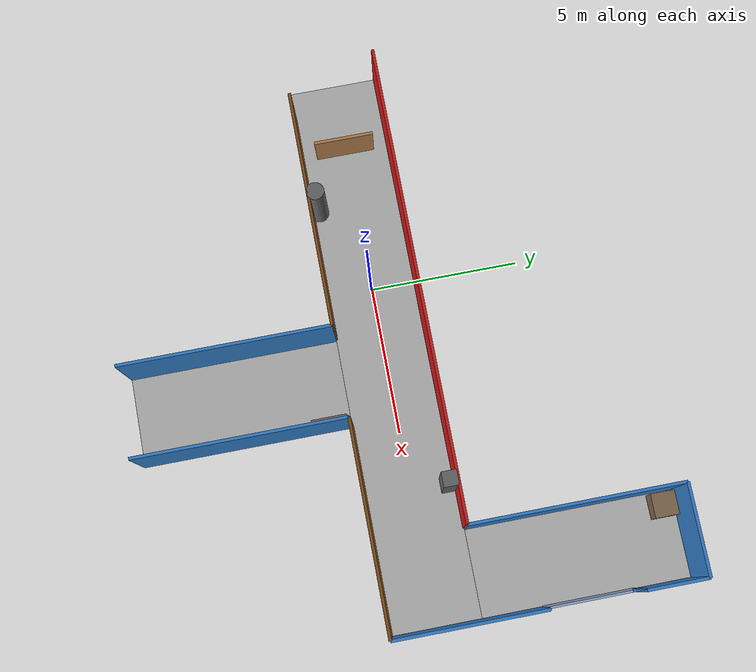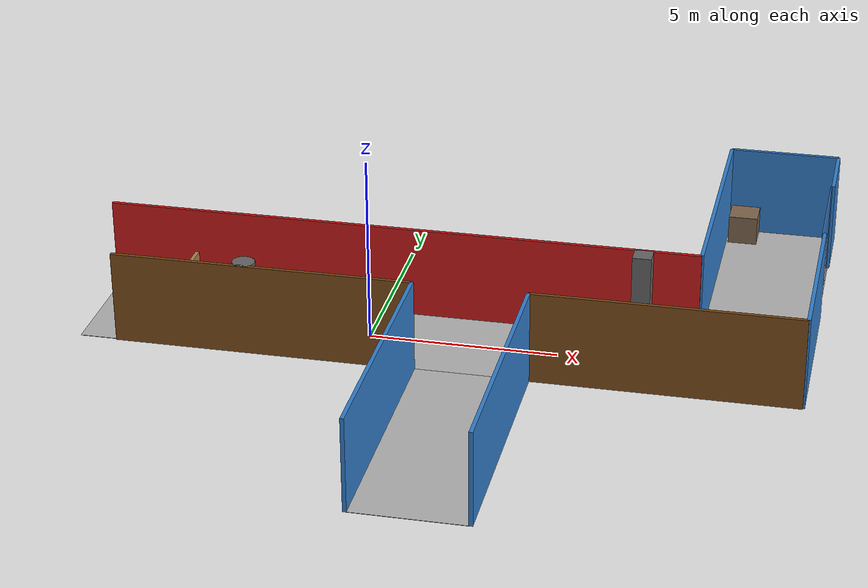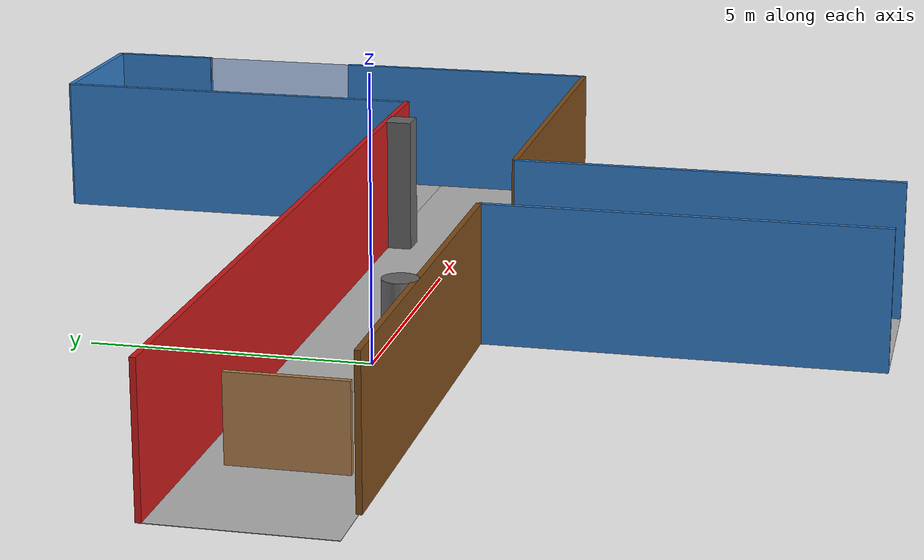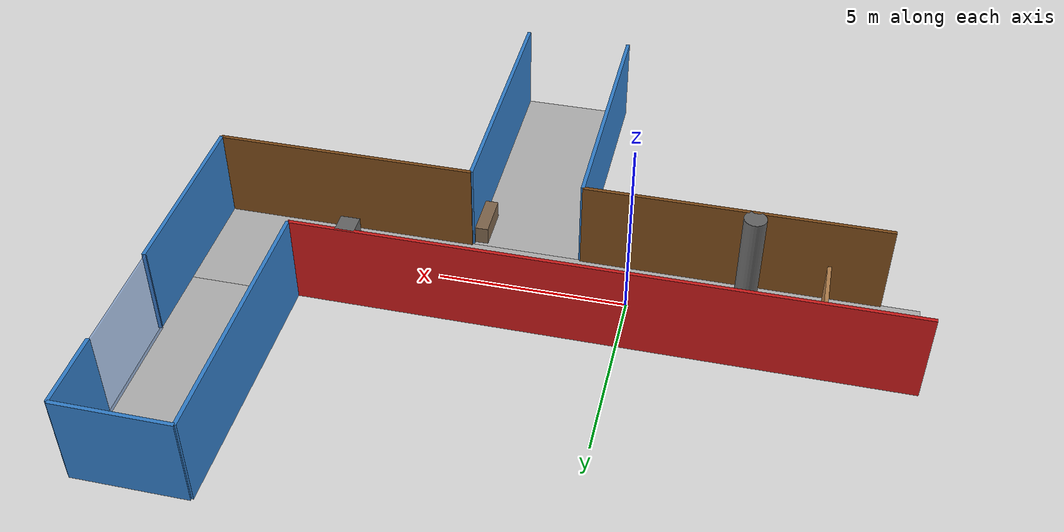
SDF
<?xml version="1.0" ?>
<sdf version="1.8">
    <world name="hallway_world">
        <physics name="1ms" type="ignored">
            <max_step_size>0.001</max_step_size>
            <real_time_factor>1.0</real_time_factor>
        </physics>

        <plugin filename="gz-sim-physics-system" name="gz::sim::systems::Physics"/>
        <plugin filename="gz-sim-user-commands-system" name="gz::sim::systems::UserCommands"/>
        <plugin filename="gz-sim-scene-broadcaster-system" name="gz::sim::systems::SceneBroadcaster"/>

        <light type="directional" name="sun">
            <cast_shadows>true</cast_shadows>
            <pose>0 0 10 0 0 0</pose>
            <diffuse>0.8 0.8 0.8 1</diffuse>
            <specular>0.2 0.2 0.2 1</specular>
            <attenuation>
                <range>1000</range>
                <constant>0.9</constant>
                <linear>0.01</linear>
                <quadratic>0.001</quadratic>
            </attenuation>
            <direction>-0.5 0.1 -0.9</direction>
        </light>

        <!-- Ceiling Lights -->
        <light type="point" name="ceiling_light_1">
            <pose>-3 0 2.3 0 0 0</pose>
            <diffuse>0.9 0.9 0.8 1</diffuse>
            <specular>0.1 0.1 0.1 1</specular>
            <attenuation>
                <range>8</range>
                <constant>0.5</constant>
                <linear>0.01</linear>
                <quadratic>0.001</quadratic>
            </attenuation>
        </light>

        <light type="point" name="ceiling_light_2">
            <pose>2 0 2.3 0 0 0</pose>
            <diffuse>0.9 0.9 0.8 1</diffuse>
            <specular>0.1 0.1 0.1 1</specular>
            <attenuation>
                <range>8</range>
                <constant>0.5</constant>
                <linear>0.01</linear>
                <quadratic>0.001</quadratic>
            </attenuation>
        </light>

        <light type="point" name="ceiling_light_3">
            <pose>7 0 2.3 0 0 0</pose>
            <diffuse>0.9 0.9 0.8 1</diffuse>
            <specular>0.1 0.1 0.1 1</specular>
            <attenuation>
                <range>8</range>
                <constant>0.5</constant>
                <linear>0.01</linear>
                <quadratic>0.001</quadratic>
            </attenuation>
        </light>

        <light type="point" name="ceiling_light_4">
            <pose>10 3 2.3 0 0 0</pose>
            <diffuse>0.9 0.9 0.8 1</diffuse>
            <specular>0.1 0.1 0.1 1</specular>
            <attenuation>
                <range>8</range>
                <constant>0.5</constant>
                <linear>0.01</linear>
                <quadratic>0.001</quadratic>
            </attenuation>
        </light>

        <!-- ========== FLOORS ========== -->

        <!-- Main Hallway Floor: from x=-6 to x=10, y=-1.5 to y=1.5 -->
        <model name="floor_main">
            <static>true</static>
            <pose>2 0 0 0 0 0</pose>
            <link name="floor_link">
                <collision name="floor_collision">
                    <geometry>
                        <box>
                            <size>19.0 3.0 0.01</size>
                        </box>
                    </geometry>
                </collision>
                <visual name="floor_visual">
                    <geometry>
                        <box>
                            <size>19.0 3.0 0.01</size>
                        </box>
                    </geometry>
                    <material>
                        <ambient>0.5 0.5 0.5 1</ambient>
                        <diffuse>0.7 0.7 0.7 1</diffuse>
                        <specular>0.1 0.1 0.1 1</specular>
                    </material>
                </visual>
            </link>
        </model>

        <!-- Cross Hallway Floor -->
        <model name="floor_cross_left">
            <static>true</static>
            <pose>10 5 0 0 0 0</pose>
            <link name="floor_link">
                <collision name="floor_collision">
                    <geometry>
                        <box>
                            <size>3.0 7.0 0.01</size>
                        </box>
                    </geometry>
                </collision>
                <visual name="floor_visual">
                    <geometry>
                        <box>
                            <size>3.0 7.0 0.01</size>
                        </box>
                    </geometry>
                    <material>
                        <ambient>0.5 0.5 0.5 1</ambient>
                        <diffuse>0.7 0.7 0.7 1</diffuse>
                        <specular>0.1 0.1 0.1 1</specular>
                    </material>
                </visual>
            </link>
        </model>

        <model name="floor_cross_right">
            <static>true</static>
            <pose>3 -5 0 0 0 0</pose>
            <link name="floor_link">
                <collision name="floor_collision">
                    <geometry>
                        <box>
                            <size>3.0 7.0 0.01</size>
                        </box>
                    </geometry>
                </collision>
                <visual name="floor_visual">
                    <geometry>
                        <box>
                            <size>3.0 7.0 0.01</size>
                        </box>
                    </geometry>
                    <material>
                        <ambient>0.5 0.5 0.5 1</ambient>
                        <diffuse>0.7 0.7 0.7 1</diffuse>
                        <specular>0.1 0.1 0.1 1</specular>
                    </material>
                </visual>
            </link>
        </model>

        <!-- ========== MAIN HALLWAY WALLS ========== -->

        <!-- Main Hallway - Left Wall (Red) -->
        <model name="wall_main_left">
            <static>true</static>
            <pose>0.5 1.5 1.25 0 0 0</pose>
            <link name="wall_link">
                <collision name="wall_collision">
                    <geometry>
                        <box>
                            <size>16.0 0.1 2.5</size>
                        </box>
                    </geometry>
                </collision>
                <visual name="wall_visual">
                    <geometry>
                        <box>
                            <size>16.0 0.1 2.5</size>
                        </box>
                    </geometry>
                    <material>
                        <ambient>0.8 0.1 0.1 1</ambient>
                        <diffuse>0.8 0.1 0.1 1</diffuse>
                        <specular>0.1 0.1 0.1 1</specular>
                    </material>
                </visual>
            </link>
        </model>

        <!-- Main Hallway - Right Wall (Brown) -->
        <model name="wall_main_right_1">
            <static>true</static>
            <pose>-2.5 -1.5 1.25 0 0 0</pose>
            <link name="wall_link">
                <collision name="wall_collision">
                    <geometry>
                        <box>
                            <size>8.0 0.1 2.5</size>
                        </box>
                    </geometry>
                </collision>
                <visual name="wall_visual">
                    <geometry>
                        <box>
                            <size>8.0 0.1 2.5</size>
                        </box>
                    </geometry>
                    <material>
                        <ambient>0.5 0.3 0.1 1</ambient>
                        <diffuse>0.5 0.3 0.1 1</diffuse>
                        <specular>0.1 0.1 0.1 1</specular>
                    </material>
                </visual>
            </link>
        </model>

        <!-- Main Hallway - Right Wall -->
        <model name="wall_main_right_2">
            <static>true</static>
            <pose>8.0 -1.5 1.25 0 0 0</pose>
            <link name="wall_link">
                <collision name="wall_collision">
                    <geometry>
                        <box>
                            <size>7.0 0.1 2.5</size>
                        </box>
                    </geometry>
                </collision>
                <visual name="wall_visual">
                    <geometry>
                        <box>
                            <size>7.0 0.1 2.5</size>
                        </box>
                    </geometry>
                    <material>
                        <ambient>0.5 0.3 0.1 1</ambient>
                        <diffuse>0.5 0.3 0.1 1</diffuse>
                        <specular>0.1 0.1 0.1 1</specular>
                    </material>
                </visual>
            </link>
        </model>

        <!-- ========== CROSS HALLWAY WALLS ========== -->

        <!-- Cross Hallway - Left Wall (Blue) -->
        <model name="wall_cross_left">
            <static>true</static>
            <pose>8.5 5.0 1.25 0 0 0</pose>
            <link name="wall_link">
                <collision name="wall_collision">
                    <geometry>
                        <box>
                            <size>0.1 7.0 2.5</size>
                        </box>
                    </geometry>
                </collision>
                <visual name="wall_visual">
                    <geometry>
                        <box>
                            <size>0.1 7.0 2.5</size>
                        </box>
                    </geometry>
                    <material>
                        <ambient>0.2 0.5 0.8 1</ambient>
                        <diffuse>0.2 0.5 0.8 1</diffuse>
                        <specular>0.1 0.1 0.1 1</specular>
                    </material>
                </visual>
            </link>
        </model>

        <!-- Cross Hallway - Right Wall (Blue) Part 1 -->
        <model name="wall_cross_right_1">
            <static>true</static>
            <pose>11.5 1.0 1.25 0 0 0</pose>
            <link name="wall_link">
                <collision name="wall_collision">
                    <geometry>
                        <box>
                            <size>0.1 5.0 2.5</size>
                        </box>
                    </geometry>
                </collision>
                <visual name="wall_visual">
                    <geometry>
                        <box>
                            <size>0.1 5.0 2.5</size>
                        </box>
                    </geometry>
                    <material>
                        <ambient>0.2 0.5 0.8 1</ambient>
                        <diffuse>0.2 0.5 0.8 1</diffuse>
                        <specular>0.1 0.1 0.1 1</specular>
                    </material>
                </visual>
            </link>
        </model>

        <!-- Cross Hallway - Right Wall - Part 2 -->
        <model name="wall_cross_right_2">
            <static>true</static>
            <pose>11.5 7.5 1.25 0 0 0</pose>
            <link name="wall_link">
                <collision name="wall_collision">
                    <geometry>
                        <box>
                            <size>0.1 2.0 2.5</size>
                        </box>
                    </geometry>
                </collision>
                <visual name="wall_visual">
                    <geometry>
                        <box>
                            <size>0.1 2.0 2.5</size>
                        </box>
                    </geometry>
                    <material>
                        <ambient>0.2 0.5 0.8 1</ambient>
                        <diffuse>0.2 0.5 0.8 1</diffuse>
                        <specular>0.1 0.1 0.1 1</specular>
                    </material>
                </visual>
            </link>
        </model>

        <!-- Cross Hallway - End Wall: y=8.5, x from 8.5 to 11.5 -->
        <model name="wall_cross_end">
            <static>true</static>
            <pose>10 8.5 1.25 0 0 0</pose>
            <link name="wall_link">
                <collision name="wall_collision">
                    <geometry>
                        <box>
                            <size>3.0 0.1 2.5</size>
                        </box>
                    </geometry>
                </collision>
                <visual name="wall_visual">
                    <geometry>
                        <box>
                            <size>3.0 0.1 2.5</size>
                        </box>
                    </geometry>
                    <material>
                        <ambient>0.2 0.5 0.8 1</ambient>
                        <diffuse>0.2 0.5 0.8 1</diffuse>
                        <specular>0.1 0.1 0.1 1</specular>
                    </material>
                </visual>
            </link>
        </model>

        <model name="wall_cross_mid_top">
            <static>true</static>
            <pose>4.5 -5.0 1.25 0 0 0</pose>
            <link name="wall_link">
                <collision name="wall_collision">
                    <geometry>
                        <box>
                            <size>0.1 7.0 2.5</size>
                        </box>
                    </geometry>
                </collision>
                <visual name="wall_visual">
                    <geometry>
                        <box>
                            <size>0.1 7.0 2.5</size>
                        </box>
                    </geometry>
                    <material>
                        <ambient>0.2 0.5 0.8 1</ambient>
                        <diffuse>0.2 0.5 0.8 1</diffuse>
                        <specular>0.1 0.1 0.1 1</specular>
                    </material>
                </visual>
            </link>
        </model>

        <model name="wall_cross_mid_bottom">
            <static>true</static>
            <pose>1.5 -5.0 1.25 0 0 0</pose>
            <link name="wall_link">
                <collision name="wall_collision">
                    <geometry>
                        <box>
                            <size>0.1 7.0 2.5</size>
                        </box>
                    </geometry>
                </collision>
                <visual name="wall_visual">
                    <geometry>
                        <box>
                            <size>0.1 7.0 2.5</size>
                        </box>
                    </geometry>
                    <material>
                        <ambient>0.2 0.5 0.8 1</ambient>
                        <diffuse>0.2 0.5 0.8 1</diffuse>
                        <specular>0.1 0.1 0.1 1</specular>
                    </material>
                </visual>
            </link>
        </model>

        <!-- ========== DOORS (SAME COLOR, DIFFERENT TRANSPARENCY) ========== -->

        <!-- BLUE GLASS DOORS - Same color, different transparency levels -->
        <model name="blue_glass_door_50">
            <static>true</static>
            <pose>11.45 5 1.25 0 0 1.570796</pose>
            <link name="door_link">
                <collision name="door_collision">
                    <geometry>
                        <box>
                            <size>3.0 0.05 2.5</size>
                        </box>
                    </geometry>
                </collision>
                <visual name="door_visual">
                    <geometry>
                        <box>
                            <size>3.0 0.05 2.5</size>
                        </box>
                    </geometry>
                    <material>
                        <ambient>0.3 0.5 0.8 1</ambient>
                        <diffuse>0.3 0.5 0.8 1</diffuse>
                        <specular>0.9 0.9 0.9 1</specular>
                    </material>
                    <transparency>0.5</transparency>
                </visual>
            </link>
        </model>

        <!-- ========== OBSTACLES & FURNITURE ========== -->

        <!-- Pillar 1 (Square) -->
        <model name="pillar_1">
            <static>true</static>
            <pose>7 1.25 1.25 0 0 0</pose>
            <link name="pillar_link">
                <collision name="pillar_collision">
                    <geometry>
                        <box>
                            <size>0.5 0.5 2.5</size>
                        </box>
                    </geometry>
                </collision>
                <visual name="pillar_visual">
                    <geometry>
                        <box>
                            <size>0.5 0.5 2.5</size>
                        </box>
                    </geometry>
                    <material>
                        <ambient>0.3 0.3 0.3 1</ambient>
                        <diffuse>0.4 0.4 0.4 1</diffuse>
                        <specular>0.2 0.2 0.2 1</specular>
                    </material>
                </visual>
            </link>
        </model>

        <!-- Pillar 2 (Cylindrical) -->
        <model name="pillar_2">
            <static>true</static>
            <pose>-3.0 -1.25 1.25 0 0 0</pose>
            <link name="pillar_link">
                <collision name="pillar_collision">
                    <geometry>
                        <cylinder>
                            <radius>0.3</radius>
                            <length>2.5</length>
                        </cylinder>
                    </geometry>
                </collision>
                <visual name="pillar_visual">
                    <geometry>
                        <cylinder>
                            <radius>0.3</radius>
                            <length>2.5</length>
                        </cylinder>
                    </geometry>
                    <material>
                        <ambient>0.3 0.3 0.3 1</ambient>
                        <diffuse>0.4 0.4 0.4 1</diffuse>
                        <specular>0.2 0.2 0.2 1</specular>
                    </material>
                </visual>
            </link>
        </model>

        <!-- Room Divider / Partial Wall -->
        <model name="room_divider">
            <static>true</static>
            <pose>-5 0 0.75 0 0 0</pose>
            <link name="divider_link">
                <collision name="divider_collision">
                    <geometry>
                        <box>
                            <size>0.1 2.0 1.5</size>
                        </box>
                    </geometry>
                </collision>
                <visual name="divider_visual">
                    <geometry>
                        <box>
                            <size>0.1 2.0 1.5</size>
                        </box>
                    </geometry>
                    <material>
                        <ambient>0.6 0.4 0.2 1</ambient>
                        <diffuse>0.7 0.5 0.3 1</diffuse>
                        <specular>0.1 0.1 0.1 1</specular>
                    </material>
                </visual>
            </link>
        </model>

        <!-- Bench -->
        <model name="bench">
            <static>true</static>
            <pose>4.3 -2.2 0.25 0 0 1.570796</pose>
            <link name="bench_link">
                <collision name="bench_collision">
                    <geometry>
                        <box>
                            <size>1.2 0.4 0.5</size>
                        </box>
                    </geometry>
                </collision>
                <visual name="bench_visual">
                    <geometry>
                        <box>
                            <size>1.2 0.4 0.5</size>
                        </box>
                    </geometry>
                    <material>
                        <ambient>0.4 0.3 0.2 1</ambient>
                        <diffuse>0.5 0.4 0.3 1</diffuse>
                        <specular>0.1 0.1 0.1 1</specular>
                    </material>
                </visual>
            </link>
        </model>

        <!-- Small Table -->
        <model name="small_table">
            <static>true</static>
            <pose>9 8.0 0.4 0 0 0</pose>
            <link name="table_link">
                <collision name="table_collision">
                    <geometry>
                        <box>
                            <size>0.8 0.8 0.8</size>
                        </box>
                    </geometry>
                </collision>
                <visual name="table_visual">
                    <geometry>
                        <box>
                            <size>0.8 0.8 0.8</size>
                        </box>
                    </geometry>
                    <material>
                        <ambient>0.4 0.3 0.2 1</ambient>
                        <diffuse>0.5 0.4 0.3 1</diffuse>
                        <specular>0.2 0.2 0.2 1</specular>
                    </material>
                </visual>
            </link>
        </model>

    </world>
</sdf>
